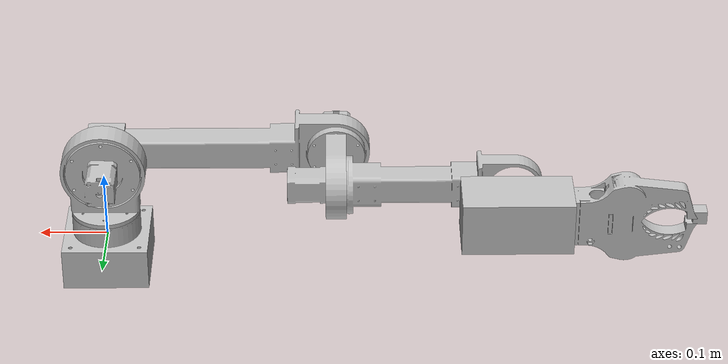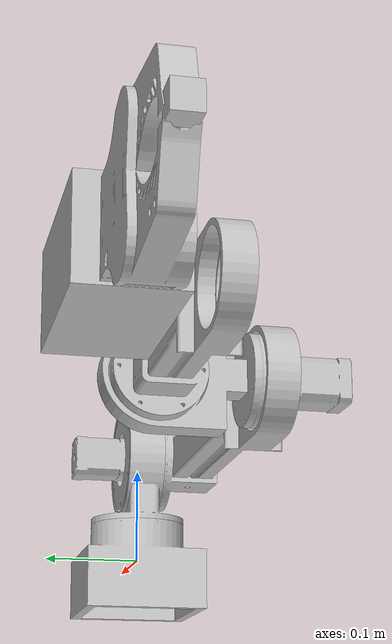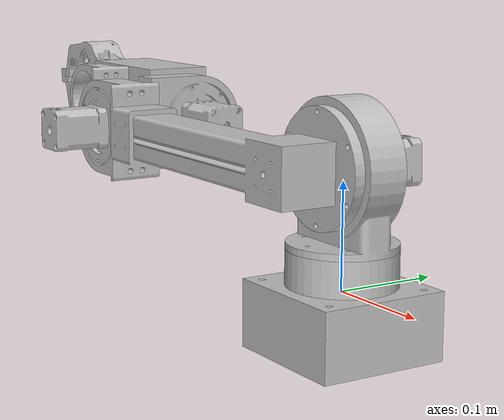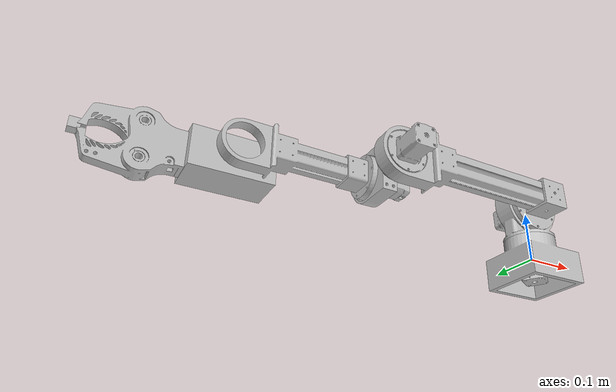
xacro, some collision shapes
<?xml version="1.0"?>
<robot xmlns:xacro="http://www.ros.org/wiki/xacro" name="SPEAR_Arm">
    <xacro:arg name="initial_positions_file" default="initial_positions.yaml" />

    <!-- Import SPEAR_Arm urdf file -->
    <xacro:include filename="$(find description)/urdf/SPEAR_Arm.urdf" />

    <!-- Import control_xacro -->
    <xacro:include filename="SPEAR_Arm.ros2_control.xacro" />

    <xacro:SPEAR_Arm_ros2_control name="FakeSystem" initial_positions_file="$(arg initial_positions_file)"/>

</robot>

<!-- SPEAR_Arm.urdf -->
<robot
  name="SPEAR_Arm">
  <link
    name="base_link">
    <inertial>
      <origin
        xyz="3.16799867477683E-17 9.21749145776317E-17 -0.00623708097620095"
        rpy="0 0 0" />
      <mass
        value="0.692524123906466" />
      <inertia
        ixx="0.00137416635128141"
        ixy="-3.33415978209264E-19"
        ixz="1.38782870903349E-20"
        iyy="0.00137416635128141"
        iyz="9.49244932547869E-20"
        izz="0.0025458973618602" />
    </inertial>
    <visual>
      <origin
        xyz="0 0 0"
        rpy="0 0 0" />
      <geometry>
        <mesh
          filename="package://description/meshes/base_link.STL" />
      </geometry>
      <material
        name="">
        <color
          rgba="0.752941176470588 0.752941176470588 0.752941176470588 1" />
      </material>
    </visual>
    <collision>
      <origin
        xyz="0 0 -0.015"
        rpy="0 0 0" />
      <geometry>
        <box size = "0.128 0.128 0.07"/>
      </geometry>
    </collision>
  </link>
  <link
    name="base_joint">
    <inertial>
      <origin
        xyz="0.0396864881982836 -0.000199483171229487 0.000203916910570974"
        rpy="0 0 0" />
      <mass
        value="1.47738507112296" />
      <inertia
        ixx="0.00173644836892209"
        ixy="5.04000250358313E-06"
        ixz="-5.50880537488887E-06"
        iyy="0.00156626480987519"
        iyz="-0.000250260146305554"
        izz="0.00161124015763902" />
    </inertial>
    <visual>
      <origin
        xyz="0 0 0"
        rpy="0 0 0" />
      <geometry>
        <mesh
          filename="package://description/meshes/base_joint.STL" />
      </geometry>
      <material
        name="">
        <color
          rgba="0.752941176470588 0.752941176470588 0.752941176470588 1" />
      </material>
    </visual>
    <collision>
      <origin
        xyz="0 0 0.12"
        rpy="0 0 0" />
      <geometry>
        <box size= "0.121 0.11 0.11"/>
      </geometry>
    </collision>
  </link>
  <joint
    name="Shoulder Roll"
    type="continuous">
    <origin
      xyz="0 0 0"
      rpy="0 0 0" />
    <parent
      link="base_link" />
    <child
      link="base_joint" />
    <axis
      xyz="0 0 1" />
  </joint>
  <link
    name="link_1">
    <inertial>
      <origin
        xyz="0.0201107904068754 -0.000699793106638869 -0.0571172260543161"
        rpy="0 0 0" />
      <mass
        value="3.44363478464573" />
      <inertia
        ixx="0.00845059338877604"
        ixy="1.52776594858077E-07"
        ixz="-6.15113949547405E-06"
        iyy="0.00638861497306379"
        iyz="5.20507537067759E-08"
        izz="0.00306734532619655" />
    </inertial>
    <visual>
      <origin
        xyz="0 0 0"
        rpy="0 0 0" />
      <geometry>
        <mesh
          filename="package://description/meshes/link_1.STL" />
      </geometry>
      <material
        name="">
        <color
          rgba="0.752941176470588 0.752941176470588 0.752941176470588 1" />
      </material>
    </visual>
    <collision>
      <origin
        xyz="-0.16 -0.045 0"
        rpy="0 0 0" />
      <geometry>
        <box size= "0.14 0.08 0.055"/>
      </geometry>
    </collision>
  </link>
  <joint
    name="Shoulder Pitch"
    type="revolute">
    <origin
      xyz="0 0 0.112"
      rpy="0 0 0" />
    <parent
      link="base_joint" />
    <child
      link="link_1" />
    <axis
      xyz="0 1 0" />
    <limit
      lower="-1.0472"
      upper="3.6652"
      effort="0"
      velocity="0" />
  </joint>
  <link
    name="link_2">
    <inertial>
      <origin
        xyz="0.00377731865823253 -1.08701091180302E-05 0.000137137871969006"
        rpy="0 0 0" />
      <mass
        value="1.5153745049325" />
      <inertia
        ixx="0.00151052573041459"
        ixy="4.318673973076E-10"
        ixz="-3.94520702946067E-06"
        iyy="0.000960514355142274"
        iyz="-1.18312010616379E-10"
        izz="0.00129766839873913" />
    </inertial>
    <visual>
      <origin
        xyz="0 0 0"
        rpy="0 0 0" />
      <geometry>
        <mesh
          filename="package://description/meshes/link_2.STL" />
      </geometry>
      <material
        name="">
        <color
          rgba="0.752941176470588 0.752941176470588 0.752941176470588 1" />
      </material>
    </visual>
    <collision>
      <origin
        xyz="0 0 0"
        rpy="0 0 0" />
      <geometry>
        <box size= "0.1 0.1 0.08"/>
      </geometry>
    </collision>
  </link>
  <joint
    name="Elbow Pitch"
    type="revolute">
    <origin
      xyz="-0.34315 -0.0428412022704851 0.000700000000055892"
      rpy="0 0 0" />
    <parent
      link="link_1" />
    <child
      link="link_2" />
    <axis
      xyz="0 1 0" />
    <limit
      lower="-2.7925"
      upper="1.9722"
      effort="0"
      velocity="0" />
  </joint>
  <link
    name="link_3">
    <inertial>
      <origin
        xyz="0.0654796463911018 -0.000151184620193826 -0.000160482278215801"
        rpy="0 0 0" />
      <mass
        value="2.07375542707273" />
      <inertia
        ixx="0.00161468452783234"
        ixy="1.97123090743411E-06"
        ixz="-1.57472017298584E-10"
        iyy="0.00248003537406924"
        iyz="-2.04818278580273E-07"
        izz="0.00230876885278511" />
    </inertial>
    <visual>
      <origin
        xyz="0 0 0"
        rpy="0 0 0" />
      <geometry>
        <mesh
          filename="package://description/meshes/link_3.STL" />
      </geometry>
      <material
        name="">
        <color
          rgba="0.752941176470588 0.752941176470588 0.752941176470588 1" />
      </material>
    </visual>
    <collision>
      <origin
        xyz="-0.17 0 0"
        rpy="0 0 0" />
      <geometry>
        <box size= "0.21 0.08 0.084"/>
      </geometry>
    </collision>
  </link>
  <joint
    name="Elbow Roll"
    type="revolute">
    <origin
      xyz="0 0.09 0"
      rpy="0 0 0" />
    <parent
      link="link_2" />
    <child
      link="link_3" />
    <axis
      xyz="1 0 0" />
    <limit
      lower="-3.1416"
      upper="3.1416"
      effort="0"
      velocity="0" />
  </joint>
  <link
    name="link_4">
    <inertial>
      <origin
        xyz="0.0665147333833135 6.57060609399601E-05 -0.00829151281291829"
        rpy="0 0 0" />
      <mass
        value="1.56472201375409" />
      <inertia
        ixx="0.00274365868526142"
        ixy="4.97483377943942E-08"
        ixz="-1.08082401323012E-06"
        iyy="0.00236577011230846"
        iyz="-2.86764704557576E-09"
        izz="0.00122113820715794" />
    </inertial>
    <visual>
      <origin
        xyz="0 0 0"
        rpy="0 0 0" />
      <geometry>
        <mesh
          filename="package://description/meshes/link_4.STL" />
      </geometry>
      <material
        name="">
        <color
          rgba="0.752941176470588 0.752941176470588 0.752941176470588 1" />
      </material>
    </visual>
    <collision>
      <origin
        xyz="0 0.085 0"
        rpy="0 0 0" />
      <geometry>
        <box size= "0.16 0.082 0.08"/>
      </geometry>
    </collision>
  </link>
  <joint
    name="Wrist Pitch"
    type="revolute">
    <origin
      xyz="-0.25884999894715 -0.00284120227048547 -0.000299999999948689"
      rpy="0 0 0" />
    <parent
      link="link_3" />
    <child
      link="link_4" />
    <axis
      xyz="0 1 0" />
    <limit
      lower="-2.7576"
      upper="2.6704"
      effort="0"
      velocity="0" />
  </joint>
  <link
    name="link_5">
    <inertial>
      <origin
        xyz="0.70125955361708 -0.00360770807542265 0.00601989780117211"
        rpy="0 0 0" />
      <mass
        value="0.750967399035288" />
      <inertia
        ixx="0.000580115693570658"
        ixy="2.85026358587835E-05"
        ixz="3.44034905741974E-05"
        iyy="0.00106973660677863"
        iyz="1.48522113054278E-05"
        izz="0.000644136496032607" />
    </inertial>
    <visual>
      <origin
        xyz="0.28 0 0"
        rpy="0 0 0" />
      <geometry>
        <mesh
          filename="package://description/meshes/link_5.STL" />
      </geometry>
      <material
        name="">
        <color
          rgba="0.752941176470588 0.752941176470588 0.752941176470588 1" />
      </material>
    </visual>
    <collision>
      <origin
        xyz="0.08 0 0"
        rpy="0 0 0" />
      <geometry>
        <box size= "0.16 0.08 0.14"/>
      </geometry>
    </collision>
  </link>
  <joint
    name="Wrist Roll"
    type="continuous">
    <origin
      xyz="-0.25 0.09 0.00300000000000089"
      rpy="0 0 0" />
    <parent
      link="link_4" />
    <child
      link="link_5" />
    <axis
      xyz="1 0 0" />
    <limit
      lower="0"
      upper="0"
      effort="0"
      velocity="0" />
  </joint>
  <link
    name="EEF">
    <visual>
      <origin
        xyz="0 0 0"
        rpy="0 0 0" />
      <geometry>
          <box size= "0.02 0.02 0.02"/>
      </geometry>
      <material
        name="">
        <color
          rgba="0.752941176470588 0.752941176470588 0.752941176470588 1" />
      </material>
    </visual>
    <collision>
      <origin
        xyz="0 0 0"
        rpy="0 0 0" />
      <geometry>
        <box size= "0.02 0.02 0.02"/>
      </geometry>
    </collision>
  </link>
  <joint
    name="EEF_Joint"
    type="fixed">
    <origin
      xyz="-0.01 0 0"
      rpy="0 0 0" />
    <parent
      link="link_5" />
    <child
      link="EEF"/>
  </joint>

</robot>
